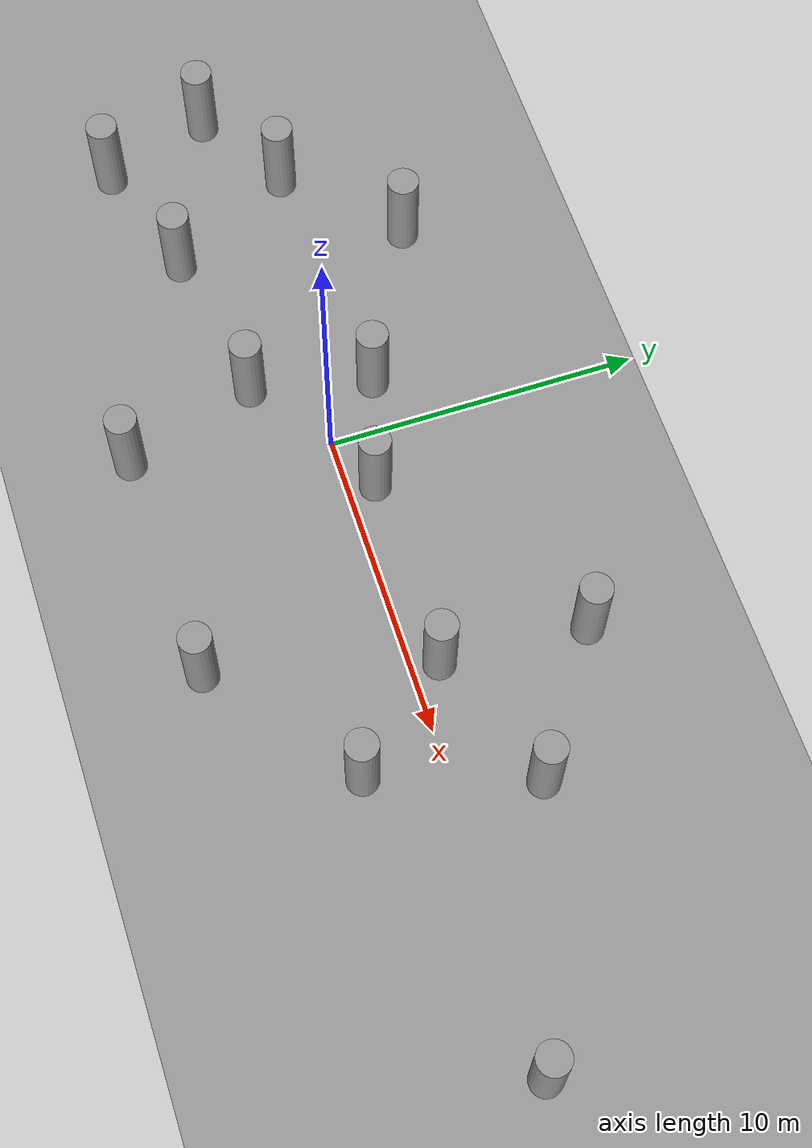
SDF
<sdf version="1.6">
 <world name="default">
  <light name="sun" type="directional">
   <pose>0 0 10 0 -0 0</pose>
   <diffuse>0.8 0.8 0.8 1</diffuse>
   <specular>0.2 0.2 0.2 1</specular>
   <attenuation>
    <range>1000</range>
    <constant>0.9</constant>
    <linear>0.01</linear>
    <quadratic>0.001</quadratic>
   </attenuation>
   <direction>-0.5 0.1 -0.9</direction>
  </light>
  <model name="ground_plane">
   <static>1</static>
   <link name="link">
    <collision name="collision">
     <geometry><plane><normal>0 0 1</normal><size>100 100</size></plane></geometry>
     <surface><friction><ode><mu>100</mu><mu2>50</mu2></ode></friction></surface>
    </collision>
    <visual name="visual">
     <cast_shadows>0</cast_shadows>
     <geometry><plane><normal>0 0 1</normal><size>100 100</size></plane></geometry>
     <material>
      <script><uri>file://media/materials/scripts/gazebo.material</uri><name>Gazebo/Grey</name></script>
     </material>
    </visual>
   </link>
  </model>
  <gravity>0 0 -9.8</gravity>
  <magnetic_field>6e-06 2.3e-05 -4.2e-05</magnetic_field>
  <atmosphere type="adiabatic"/>
  <physics name="default_physics" default="0" type="ode">
   <max_step_size>0.001</max_step_size>
   <real_time_factor>1</real_time_factor>
   <real_time_update_rate>1000</real_time_update_rate>
  </physics>
  <scene><ambient>0.4 0.4 0.4 1</ambient><background>0.7 0.7 0.7 1</background><shadows>1</shadows></scene>
  <audio><device>default</device></audio>
  <spherical_coordinates>
   <surface_model>EARTH_WGS84</surface_model>
   <latitude_deg>0</latitude_deg>
   <longitude_deg>0</longitude_deg>
   <elevation>0</elevation>
   <heading_deg>0</heading_deg>
  </spherical_coordinates>
  <model name="ground">
   <link name="link">
    <inertial>
     <mass>1</mass>
     <inertia>
      <ixx>0.166667</ixx>
      <ixy>0</ixy>
      <ixz>0</ixz>
      <iyy>0.166667</iyy>
      <iyz>0</iyz>
      <izz>0.166667</izz>
     </inertia>
    </inertial>
    <visual name="visual">
     <geometry><box><size>80 20 0.5</size></box></geometry>
     <material>
      <script><name>Gazebo/Grey</name><uri>file://media/materials/scripts/gazebo.material</uri></script>
      <shader type="vertex"><normal_map>__default__</normal_map></shader>
      <ambient>0.3 0.3 0.3 1</ambient>
      <diffuse>0.7 0.7 0.7 1</diffuse>
      <specular>0.01 0.01 0.01 1</specular>
      <emissive>0 0 0 1</emissive>
     </material>
    </visual>
    <collision name="collision">
     <geometry><box><size>80 20 0.5</size></box></geometry>
     <surface>
      <friction>
       <ode><mu>1</mu><mu2>1</mu2><fdir1>0 0 0</fdir1><slip1>0</slip1><slip2>0</slip2></ode>
       <torsional>
        <coefficient>1</coefficient>
        <patch_radius>0</patch_radius>
        <surface_radius>0</surface_radius>
        <use_patch_radius>1</use_patch_radius>
        <ode><slip>0</slip></ode>
       </torsional>
      </friction>
      <bounce><restitution_coefficient>0</restitution_coefficient><threshold>1e+06</threshold></bounce>
      <contact>
       <collide_without_contact>0</collide_without_contact>
       <collide_without_contact_bitmask>1</collide_without_contact_bitmask>
       <collide_bitmask>1</collide_bitmask>
       <ode>
        <soft_cfm>0</soft_cfm>
        <soft_erp>0.2</soft_erp>
        <kp>1e+13</kp>
        <kd>1</kd>
        <max_vel>0.01</max_vel>
        <min_depth>0</min_depth>
       </ode>
       <bullet>
        <split_impulse>1</split_impulse>
        <split_impulse_penetration_threshold>-0.01</split_impulse_penetration_threshold>
        <soft_cfm>0</soft_cfm>
        <soft_erp>0.2</soft_erp>
        <kp>1e+13</kp>
        <kd>1</kd>
       </bullet>
      </contact>
     </surface>
    </collision>
   </link>
   <static>1</static>
   <pose>-0.009361 -0.012874 0.252665 0 -0 0</pose>
  </model>
  <model name="unit_cylinder_clone_clone_0_clone">
   <link name="link">
    <inertial>
     <mass>1</mass>
     <inertia><ixx>0.145833</ixx><ixy>0</ixy><ixz>0</ixz><iyy>0.145833</iyy><iyz>0</iyz><izz>0.125</izz></inertia>
    </inertial>
    <visual name="visual">
     <geometry><cylinder><radius>0.5</radius><length>3</length></cylinder></geometry>
     <material>
      <script><name>Gazebo/Grey</name><uri>file://media/materials/scripts/gazebo.material</uri></script>
      <shader type="vertex"><normal_map>__default__</normal_map></shader>
      <ambient>1 1 1 1</ambient>
      <diffuse>0.7 0.7 0.7 1</diffuse>
      <specular>0.01 0.01 0.01 1</specular>
      <emissive>0 0 0 1</emissive>
     </material>
    </visual>
    <collision name="collision">
     <geometry><cylinder><radius>0.5</radius><length>3</length></cylinder></geometry>
     <surface>
      <friction>
       <ode><mu>1</mu><mu2>1</mu2><fdir1>0 0 0</fdir1><slip1>0</slip1><slip2>0</slip2></ode>
       <torsional>
        <coefficient>1</coefficient>
        <patch_radius>0</patch_radius>
        <surface_radius>0</surface_radius>
        <use_patch_radius>1</use_patch_radius>
        <ode><slip>0</slip></ode>
       </torsional>
      </friction>
      <bounce><restitution_coefficient>0</restitution_coefficient><threshold>1e+06</threshold></bounce>
      <contact>
       <collide_without_contact>0</collide_without_contact>
       <collide_without_contact_bitmask>1</collide_without_contact_bitmask>
       <collide_bitmask>1</collide_bitmask>
       <ode>
        <soft_cfm>0</soft_cfm>
        <soft_erp>0.2</soft_erp>
        <kp>1e+13</kp>
        <kd>1</kd>
        <max_vel>0.01</max_vel>
        <min_depth>0</min_depth>
       </ode>
       <bullet>
        <split_impulse>1</split_impulse>
        <split_impulse_penetration_threshold>-0.01</split_impulse_penetration_threshold>
        <soft_cfm>0</soft_cfm>
        <soft_erp>0.2</soft_erp>
        <kp>1e+13</kp>
        <kd>1</kd>
       </bullet>
      </contact>
     </surface>
    </collision>
   </link>
   <static>1</static>
   <pose>-12.5339 -0.592621 2.00274 -2e-06 2.7e-05 -0.046136</pose>
  </model>
  <model name="unit_cylinder_clone_clone_clone">
   <link name="link">
    <inertial>
     <mass>1</mass>
     <inertia><ixx>0.145833</ixx><ixy>0</ixy><ixz>0</ixz><iyy>0.145833</iyy><iyz>0</iyz><izz>0.125</izz></inertia>
    </inertial>
    <visual name="visual">
     <geometry><cylinder><radius>0.5</radius><length>3</length></cylinder></geometry>
     <material>
      <script><name>Gazebo/Grey</name><uri>file://media/materials/scripts/gazebo.material</uri></script>
      <shader type="vertex"><normal_map>__default__</normal_map></shader>
      <ambient>1 1 1 1</ambient>
      <diffuse>0.7 0.7 0.7 1</diffuse>
      <specular>0.01 0.01 0.01 1</specular>
      <emissive>0 0 0 1</emissive>
     </material>
    </visual>
    <collision name="collision">
     <geometry><cylinder><radius>0.5</radius><length>3</length></cylinder></geometry>
     <surface>
      <friction>
       <ode><mu>1</mu><mu2>1</mu2><fdir1>0 0 0</fdir1><slip1>0</slip1><slip2>0</slip2></ode>
       <torsional>
        <coefficient>1</coefficient>
        <patch_radius>0</patch_radius>
        <surface_radius>0</surface_radius>
        <use_patch_radius>1</use_patch_radius>
        <ode><slip>0</slip></ode>
       </torsional>
      </friction>
      <bounce><restitution_coefficient>0</restitution_coefficient><threshold>1e+06</threshold></bounce>
      <contact>
       <collide_without_contact>0</collide_without_contact>
       <collide_without_contact_bitmask>1</collide_without_contact_bitmask>
       <collide_bitmask>1</collide_bitmask>
       <ode>
        <soft_cfm>0</soft_cfm>
        <soft_erp>0.2</soft_erp>
        <kp>1e+13</kp>
        <kd>1</kd>
        <max_vel>0.01</max_vel>
        <min_depth>0</min_depth>
       </ode>
       <bullet>
        <split_impulse>1</split_impulse>
        <split_impulse_penetration_threshold>-0.01</split_impulse_penetration_threshold>
        <soft_cfm>0</soft_cfm>
        <soft_erp>0.2</soft_erp>
        <kp>1e+13</kp>
        <kd>1</kd>
       </bullet>
      </contact>
     </surface>
    </collision>
   </link>
   <static>1</static>
   <pose>-2.25323 -1.93291 2.00259 1.6e-05 4e-06 -0.004049</pose>
  </model>
  <model name="unit_cylinder_clone_clone_clone_clone_0">
   <link name="link">
    <inertial>
     <mass>1</mass>
     <inertia><ixx>0.145833</ixx><ixy>0</ixy><ixz>0</ixz><iyy>0.145833</iyy><iyz>0</iyz><izz>0.125</izz></inertia>
    </inertial>
    <visual name="visual">
     <geometry><cylinder><radius>0.5</radius><length>3</length></cylinder></geometry>
     <material>
      <script><name>Gazebo/Grey</name><uri>file://media/materials/scripts/gazebo.material</uri></script>
      <shader type="vertex"><normal_map>__default__</normal_map></shader>
      <ambient>1 1 1 1</ambient>
      <diffuse>0.7 0.7 0.7 1</diffuse>
      <specular>0.01 0.01 0.01 1</specular>
      <emissive>0 0 0 1</emissive>
     </material>
    </visual>
    <collision name="collision">
     <geometry><cylinder><radius>0.5</radius><length>3</length></cylinder></geometry>
     <surface>
      <friction>
       <ode><mu>1</mu><mu2>1</mu2><fdir1>0 0 0</fdir1><slip1>0</slip1><slip2>0</slip2></ode>
       <torsional>
        <coefficient>1</coefficient>
        <patch_radius>0</patch_radius>
        <surface_radius>0</surface_radius>
        <use_patch_radius>1</use_patch_radius>
        <ode><slip>0</slip></ode>
       </torsional>
      </friction>
      <bounce><restitution_coefficient>0</restitution_coefficient><threshold>1e+06</threshold></bounce>
      <contact>
       <collide_without_contact>0</collide_without_contact>
       <collide_without_contact_bitmask>1</collide_without_contact_bitmask>
       <collide_bitmask>1</collide_bitmask>
       <ode>
        <soft_cfm>0</soft_cfm>
        <soft_erp>0.2</soft_erp>
        <kp>1e+13</kp>
        <kd>1</kd>
        <max_vel>0.01</max_vel>
        <min_depth>0</min_depth>
       </ode>
       <bullet>
        <split_impulse>1</split_impulse>
        <split_impulse_penetration_threshold>-0.01</split_impulse_penetration_threshold>
        <soft_cfm>0</soft_cfm>
        <soft_erp>0.2</soft_erp>
        <kp>1e+13</kp>
        <kd>1</kd>
       </bullet>
      </contact>
     </surface>
    </collision>
   </link>
   <static>1</static>
   <pose>8.25351 0.781254 2.0026 1.6e-05 4e-06 -0.004049</pose>
  </model>
  <model name="unit_cylinder_clone_clone_clone_clone_0_clone">
   <link name="link">
    <inertial>
     <mass>1</mass>
     <inertia><ixx>0.145833</ixx><ixy>0</ixy><ixz>0</ixz><iyy>0.145833</iyy><iyz>0</iyz><izz>0.125</izz></inertia>
    </inertial>
    <visual name="visual">
     <geometry><cylinder><radius>0.5</radius><length>3</length></cylinder></geometry>
     <material>
      <script><name>Gazebo/Grey</name><uri>file://media/materials/scripts/gazebo.material</uri></script>
      <shader type="vertex"><normal_map>__default__</normal_map></shader>
      <ambient>1 1 1 1</ambient>
      <diffuse>0.7 0.7 0.7 1</diffuse>
      <specular>0.01 0.01 0.01 1</specular>
      <emissive>0 0 0 1</emissive>
     </material>
    </visual>
    <collision name="collision">
     <geometry><cylinder><radius>0.5</radius><length>3</length></cylinder></geometry>
     <surface>
      <friction>
       <ode><mu>1</mu><mu2>1</mu2><fdir1>0 0 0</fdir1><slip1>0</slip1><slip2>0</slip2></ode>
       <torsional>
        <coefficient>1</coefficient>
        <patch_radius>0</patch_radius>
        <surface_radius>0</surface_radius>
        <use_patch_radius>1</use_patch_radius>
        <ode><slip>0</slip></ode>
       </torsional>
      </friction>
      <bounce><restitution_coefficient>0</restitution_coefficient><threshold>1e+06</threshold></bounce>
      <contact>
       <collide_without_contact>0</collide_without_contact>
       <collide_without_contact_bitmask>1</collide_without_contact_bitmask>
       <collide_bitmask>1</collide_bitmask>
       <ode>
        <soft_cfm>0</soft_cfm>
        <soft_erp>0.2</soft_erp>
        <kp>1e+13</kp>
        <kd>1</kd>
        <max_vel>0.01</max_vel>
        <min_depth>0</min_depth>
       </ode>
       <bullet>
        <split_impulse>1</split_impulse>
        <split_impulse_penetration_threshold>-0.01</split_impulse_penetration_threshold>
        <soft_cfm>0</soft_cfm>
        <soft_erp>0.2</soft_erp>
        <kp>1e+13</kp>
        <kd>1</kd>
       </bullet>
      </contact>
     </surface>
    </collision>
   </link>
   <static>1</static>
   <pose>20.4673 -0.33297 2.00257 1.6e-05 4e-06 -0.004049</pose>
  </model>
  <model name="unit_cylinder_clone_clone_clone_clone_clone">
   <link name="link">
    <inertial>
     <mass>1</mass>
     <inertia><ixx>0.145833</ixx><ixy>0</ixy><ixz>0</ixz><iyy>0.145833</iyy><iyz>0</iyz><izz>0.125</izz></inertia>
    </inertial>
    <visual name="visual">
     <geometry><cylinder><radius>0.5</radius><length>3</length></cylinder></geometry>
     <material>
      <script><name>Gazebo/Grey</name><uri>file://media/materials/scripts/gazebo.material</uri></script>
      <shader type="vertex"><normal_map>__default__</normal_map></shader>
      <ambient>1 1 1 1</ambient>
      <diffuse>0.7 0.7 0.7 1</diffuse>
      <specular>0.01 0.01 0.01 1</specular>
      <emissive>0 0 0 1</emissive>
     </material>
    </visual>
    <collision name="collision">
     <geometry><cylinder><radius>0.5</radius><length>3</length></cylinder></geometry>
     <surface>
      <friction>
       <ode><mu>1</mu><mu2>1</mu2><fdir1>0 0 0</fdir1><slip1>0</slip1><slip2>0</slip2></ode>
       <torsional>
        <coefficient>1</coefficient>
        <patch_radius>0</patch_radius>
        <surface_radius>0</surface_radius>
        <use_patch_radius>1</use_patch_radius>
        <ode><slip>0</slip></ode>
       </torsional>
      </friction>
      <bounce><restitution_coefficient>0</restitution_coefficient><threshold>1e+06</threshold></bounce>
      <contact>
       <collide_without_contact>0</collide_without_contact>
       <collide_without_contact_bitmask>1</collide_without_contact_bitmask>
       <collide_bitmask>1</collide_bitmask>
       <ode>
        <soft_cfm>0</soft_cfm>
        <soft_erp>0.2</soft_erp>
        <kp>1e+13</kp>
        <kd>1</kd>
        <max_vel>0.01</max_vel>
        <min_depth>0</min_depth>
       </ode>
       <bullet>
        <split_impulse>1</split_impulse>
        <split_impulse_penetration_threshold>-0.01</split_impulse_penetration_threshold>
        <soft_cfm>0</soft_cfm>
        <soft_erp>0.2</soft_erp>
        <kp>1e+13</kp>
        <kd>1</kd>
       </bullet>
      </contact>
     </surface>
    </collision>
   </link>
   <static>1</static>
   <pose>-7.40268 -2.77786 2.00266 1.6e-05 5e-06 -0.047607</pose>
  </model>
  <model name="unit_cylinder_clone_clone_clone_clone_1">
   <link name="link">
    <inertial>
     <mass>1</mass>
     <inertia><ixx>0.145833</ixx><ixy>0</ixy><ixz>0</ixz><iyy>0.145833</iyy><iyz>0</iyz><izz>0.125</izz></inertia>
    </inertial>
    <visual name="visual">
     <geometry><cylinder><radius>0.5</radius><length>3</length></cylinder></geometry>
     <material>
      <script><name>Gazebo/Grey</name><uri>file://media/materials/scripts/gazebo.material</uri></script>
      <shader type="vertex"><normal_map>__default__</normal_map></shader>
      <ambient>1 1 1 1</ambient>
      <diffuse>0.7 0.7 0.7 1</diffuse>
      <specular>0.01 0.01 0.01 1</specular>
      <emissive>0 0 0 1</emissive>
     </material>
    </visual>
    <collision name="collision">
     <geometry><cylinder><radius>0.5</radius><length>3</length></cylinder></geometry>
     <surface>
      <friction>
       <ode><mu>1</mu><mu2>1</mu2><fdir1>0 0 0</fdir1><slip1>0</slip1><slip2>0</slip2></ode>
       <torsional>
        <coefficient>1</coefficient>
        <patch_radius>0</patch_radius>
        <surface_radius>0</surface_radius>
        <use_patch_radius>1</use_patch_radius>
        <ode><slip>0</slip></ode>
       </torsional>
      </friction>
      <bounce><restitution_coefficient>0</restitution_coefficient><threshold>1e+06</threshold></bounce>
      <contact>
       <collide_without_contact>0</collide_without_contact>
       <collide_without_contact_bitmask>1</collide_without_contact_bitmask>
       <collide_bitmask>1</collide_bitmask>
       <ode>
        <soft_cfm>0</soft_cfm>
        <soft_erp>0.2</soft_erp>
        <kp>1e+13</kp>
        <kd>1</kd>
        <max_vel>0.01</max_vel>
        <min_depth>0</min_depth>
       </ode>
       <bullet>
        <split_impulse>1</split_impulse>
        <split_impulse_penetration_threshold>-0.01</split_impulse_penetration_threshold>
        <soft_cfm>0</soft_cfm>
        <soft_erp>0.2</soft_erp>
        <kp>1e+13</kp>
        <kd>1</kd>
       </bullet>
      </contact>
     </surface>
    </collision>
   </link>
   <static>1</static>
   <pose>-1.39025 1.82135 2.0026 1.6e-05 4e-06 -0.004049</pose>
  </model>
  <model name="unit_cylinder_clone_clone_clone_clone_2">
   <link name="link">
    <inertial>
     <mass>1</mass>
     <inertia><ixx>0.145833</ixx><ixy>0</ixy><ixz>0</ixz><iyy>0.145833</iyy><iyz>0</iyz><izz>0.125</izz></inertia>
    </inertial>
    <visual name="visual">
     <geometry><cylinder><radius>0.5</radius><length>3</length></cylinder></geometry>
     <material>
      <script><name>Gazebo/Grey</name><uri>file://media/materials/scripts/gazebo.material</uri></script>
      <shader type="vertex"><normal_map>__default__</normal_map></shader>
      <ambient>1 1 1 1</ambient>
      <diffuse>0.7 0.7 0.7 1</diffuse>
      <specular>0.01 0.01 0.01 1</specular>
      <emissive>0 0 0 1</emissive>
     </material>
    </visual>
    <collision name="collision">
     <geometry><cylinder><radius>0.5</radius><length>3</length></cylinder></geometry>
     <surface>
      <friction>
       <ode><mu>1</mu><mu2>1</mu2><fdir1>0 0 0</fdir1><slip1>0</slip1><slip2>0</slip2></ode>
       <torsional>
        <coefficient>1</coefficient>
        <patch_radius>0</patch_radius>
        <surface_radius>0</surface_radius>
        <use_patch_radius>1</use_patch_radius>
        <ode><slip>0</slip></ode>
       </torsional>
      </friction>
      <bounce><restitution_coefficient>0</restitution_coefficient><threshold>1e+06</threshold></bounce>
      <contact>
       <collide_without_contact>0</collide_without_contact>
       <collide_without_contact_bitmask>1</collide_without_contact_bitmask>
       <collide_bitmask>1</collide_bitmask>
       <ode>
        <soft_cfm>0</soft_cfm>
        <soft_erp>0.2</soft_erp>
        <kp>1e+13</kp>
        <kd>1</kd>
        <max_vel>0.01</max_vel>
        <min_depth>0</min_depth>
       </ode>
       <bullet>
        <split_impulse>1</split_impulse>
        <split_impulse_penetration_threshold>-0.01</split_impulse_penetration_threshold>
        <soft_cfm>0</soft_cfm>
        <soft_erp>0.2</soft_erp>
        <kp>1e+13</kp>
        <kd>1</kd>
       </bullet>
      </contact>
     </surface>
    </collision>
   </link>
   <static>1</static>
   <pose>2.09358 0.787531 2.0026 1.6e-05 4e-06 -0.004049</pose>
  </model>
  <model name="unit_cylinder_clone_clone_clone_clone_3">
   <link name="link">
    <inertial>
     <mass>1</mass>
     <inertia><ixx>0.145833</ixx><ixy>0</ixy><ixz>0</ixz><iyy>0.145833</iyy><iyz>0</iyz><izz>0.125</izz></inertia>
    </inertial>
    <visual name="visual">
     <geometry><cylinder><radius>0.5</radius><length>3</length></cylinder></geometry>
     <material>
      <script><name>Gazebo/Grey</name><uri>file://media/materials/scripts/gazebo.material</uri></script>
      <shader type="vertex"><normal_map>__default__</normal_map></shader>
      <ambient>1 1 1 1</ambient>
      <diffuse>0.7 0.7 0.7 1</diffuse>
      <specular>0.01 0.01 0.01 1</specular>
      <emissive>0 0 0 1</emissive>
     </material>
    </visual>
    <collision name="collision">
     <geometry><cylinder><radius>0.5</radius><length>3</length></cylinder></geometry>
     <surface>
      <friction>
       <ode><mu>1</mu><mu2>1</mu2><fdir1>0 0 0</fdir1><slip1>0</slip1><slip2>0</slip2></ode>
       <torsional>
        <coefficient>1</coefficient>
        <patch_radius>0</patch_radius>
        <surface_radius>0</surface_radius>
        <use_patch_radius>1</use_patch_radius>
        <ode><slip>0</slip></ode>
       </torsional>
      </friction>
      <bounce><restitution_coefficient>0</restitution_coefficient><threshold>1e+06</threshold></bounce>
      <contact>
       <collide_without_contact>0</collide_without_contact>
       <collide_without_contact_bitmask>1</collide_without_contact_bitmask>
       <collide_bitmask>1</collide_bitmask>
       <ode>
        <soft_cfm>0</soft_cfm>
        <soft_erp>0.2</soft_erp>
        <kp>1e+13</kp>
        <kd>1</kd>
        <max_vel>0.01</max_vel>
        <min_depth>0</min_depth>
       </ode>
       <bullet>
        <split_impulse>1</split_impulse>
        <split_impulse_penetration_threshold>-0.01</split_impulse_penetration_threshold>
        <soft_cfm>0</soft_cfm>
        <soft_erp>0.2</soft_erp>
        <kp>1e+13</kp>
        <kd>1</kd>
       </bullet>
      </contact>
     </surface>
    </collision>
   </link>
   <static>1</static>
   <pose>12.6063 2.46438 2.0026 1.6e-05 4e-06 -0.004049</pose>
  </model>
  <model name="unit_cylinder_clone_clone_clone_clone_4">
   <link name="link">
    <inertial>
     <mass>1</mass>
     <inertia><ixx>0.145833</ixx><ixy>0</ixy><ixz>0</ixz><iyy>0.145833</iyy><iyz>0</iyz><izz>0.125</izz></inertia>
    </inertial>
    <visual name="visual">
     <geometry><cylinder><radius>0.5</radius><length>3</length></cylinder></geometry>
     <material>
      <script><name>Gazebo/Grey</name><uri>file://media/materials/scripts/gazebo.material</uri></script>
      <shader type="vertex"><normal_map>__default__</normal_map></shader>
      <ambient>1 1 1 1</ambient>
      <diffuse>0.7 0.7 0.7 1</diffuse>
      <specular>0.01 0.01 0.01 1</specular>
      <emissive>0 0 0 1</emissive>
     </material>
    </visual>
    <collision name="collision">
     <geometry><cylinder><radius>0.5</radius><length>3</length></cylinder></geometry>
     <surface>
      <friction>
       <ode><mu>1</mu><mu2>1</mu2><fdir1>0 0 0</fdir1><slip1>0</slip1><slip2>0</slip2></ode>
       <torsional>
        <coefficient>1</coefficient>
        <patch_radius>0</patch_radius>
        <surface_radius>0</surface_radius>
        <use_patch_radius>1</use_patch_radius>
        <ode><slip>0</slip></ode>
       </torsional>
      </friction>
      <bounce><restitution_coefficient>0</restitution_coefficient><threshold>1e+06</threshold></bounce>
      <contact>
       <collide_without_contact>0</collide_without_contact>
       <collide_without_contact_bitmask>1</collide_without_contact_bitmask>
       <collide_bitmask>1</collide_bitmask>
       <ode>
        <soft_cfm>0</soft_cfm>
        <soft_erp>0.2</soft_erp>
        <kp>1e+13</kp>
        <kd>1</kd>
        <max_vel>0.01</max_vel>
        <min_depth>0</min_depth>
       </ode>
       <bullet>
        <split_impulse>1</split_impulse>
        <split_impulse_penetration_threshold>-0.01</split_impulse_penetration_threshold>
        <soft_cfm>0</soft_cfm>
        <soft_erp>0.2</soft_erp>
        <kp>1e+13</kp>
        <kd>1</kd>
       </bullet>
      </contact>
     </surface>
    </collision>
   </link>
   <static>1</static>
   <pose>10.9397 -2.43625 2.0026 1.6e-05 4e-06 -0.004049</pose>
  </model>
  <model name="unit_cylinder_clone_clone_clone_clone_5">
   <link name="link">
    <inertial>
     <mass>1</mass>
     <inertia><ixx>0.145833</ixx><ixy>0</ixy><ixz>0</ixz><iyy>0.145833</iyy><iyz>0</iyz><izz>0.125</izz></inertia>
    </inertial>
    <visual name="visual">
     <geometry><cylinder><radius>0.5</radius><length>3</length></cylinder></geometry>
     <material>
      <script><name>Gazebo/Grey</name><uri>file://media/materials/scripts/gazebo.material</uri></script>
      <shader type="vertex"><normal_map>__default__</normal_map></shader>
      <ambient>1 1 1 1</ambient>
      <diffuse>0.7 0.7 0.7 1</diffuse>
      <specular>0.01 0.01 0.01 1</specular>
      <emissive>0 0 0 1</emissive>
     </material>
    </visual>
    <collision name="collision">
     <geometry><cylinder><radius>0.5</radius><length>3</length></cylinder></geometry>
     <surface>
      <friction>
       <ode><mu>1</mu><mu2>1</mu2><fdir1>0 0 0</fdir1><slip1>0</slip1><slip2>0</slip2></ode>
       <torsional>
        <coefficient>1</coefficient>
        <patch_radius>0</patch_radius>
        <surface_radius>0</surface_radius>
        <use_patch_radius>1</use_patch_radius>
        <ode><slip>0</slip></ode>
       </torsional>
      </friction>
      <bounce><restitution_coefficient>0</restitution_coefficient><threshold>1e+06</threshold></bounce>
      <contact>
       <collide_without_contact>0</collide_without_contact>
       <collide_without_contact_bitmask>1</collide_without_contact_bitmask>
       <collide_bitmask>1</collide_bitmask>
       <ode>
        <soft_cfm>0</soft_cfm>
        <soft_erp>0.2</soft_erp>
        <kp>1e+13</kp>
        <kd>1</kd>
        <max_vel>0.01</max_vel>
        <min_depth>0</min_depth>
       </ode>
       <bullet>
        <split_impulse>1</split_impulse>
        <split_impulse_penetration_threshold>-0.01</split_impulse_penetration_threshold>
        <soft_cfm>0</soft_cfm>
        <soft_erp>0.2</soft_erp>
        <kp>1e+13</kp>
        <kd>1</kd>
       </bullet>
      </contact>
     </surface>
    </collision>
   </link>
   <static>1</static>
   <pose>-0.905248 -6.15909 2.00256 1.6e-05 4e-06 -0.004049</pose>
  </model>
  <model name="unit_cylinder_clone_clone_0_clone_clone">
   <link name="link">
    <inertial>
     <mass>1</mass>
     <inertia><ixx>0.145833</ixx><ixy>0</ixy><ixz>0</ixz><iyy>0.145833</iyy><iyz>0</iyz><izz>0.125</izz></inertia>
    </inertial>
    <visual name="visual">
     <geometry><cylinder><radius>0.5</radius><length>3</length></cylinder></geometry>
     <material>
      <script><name>Gazebo/Grey</name><uri>file://media/materials/scripts/gazebo.material</uri></script>
      <shader type="vertex"><normal_map>__default__</normal_map></shader>
      <ambient>1 1 1 1</ambient>
      <diffuse>0.7 0.7 0.7 1</diffuse>
      <specular>0.01 0.01 0.01 1</specular>
      <emissive>0 0 0 1</emissive>
     </material>
    </visual>
    <collision name="collision">
     <geometry><cylinder><radius>0.5</radius><length>3</length></cylinder></geometry>
     <surface>
      <friction>
       <ode><mu>1</mu><mu2>1</mu2><fdir1>0 0 0</fdir1><slip1>0</slip1><slip2>0</slip2></ode>
       <torsional>
        <coefficient>1</coefficient>
        <patch_radius>0</patch_radius>
        <surface_radius>0</surface_radius>
        <use_patch_radius>1</use_patch_radius>
        <ode><slip>0</slip></ode>
       </torsional>
      </friction>
      <bounce><restitution_coefficient>0</restitution_coefficient><threshold>1e+06</threshold></bounce>
      <contact>
       <collide_without_contact>0</collide_without_contact>
       <collide_without_contact_bitmask>1</collide_without_contact_bitmask>
       <collide_bitmask>1</collide_bitmask>
       <ode>
        <soft_cfm>0</soft_cfm>
        <soft_erp>0.2</soft_erp>
        <kp>1e+13</kp>
        <kd>1</kd>
        <max_vel>0.01</max_vel>
        <min_depth>0</min_depth>
       </ode>
       <bullet>
        <split_impulse>1</split_impulse>
        <split_impulse_penetration_threshold>-0.01</split_impulse_penetration_threshold>
        <soft_cfm>0</soft_cfm>
        <soft_erp>0.2</soft_erp>
        <kp>1e+13</kp>
        <kd>1</kd>
       </bullet>
      </contact>
     </surface>
    </collision>
   </link>
   <static>1</static>
   <pose>-11.4004 -4.03468 2.00275 -2e-06 2.7e-05 -0.046136</pose>
  </model>
  <model name="unit_cylinder_clone_clone_clone_clone_clone_0">
   <link name="link">
    <inertial>
     <mass>1</mass>
     <inertia><ixx>0.145833</ixx><ixy>0</ixy><ixz>0</ixz><iyy>0.145833</iyy><iyz>0</iyz><izz>0.125</izz></inertia>
    </inertial>
    <visual name="visual">
     <geometry><cylinder><radius>0.5</radius><length>3</length></cylinder></geometry>
     <material>
      <script><name>Gazebo/Grey</name><uri>file://media/materials/scripts/gazebo.material</uri></script>
      <shader type="vertex"><normal_map>__default__</normal_map></shader>
      <ambient>1 1 1 1</ambient>
      <diffuse>0.7 0.7 0.7 1</diffuse>
      <specular>0.01 0.01 0.01 1</specular>
      <emissive>0 0 0 1</emissive>
     </material>
    </visual>
    <collision name="collision">
     <geometry><cylinder><radius>0.5</radius><length>3</length></cylinder></geometry>
     <surface>
      <friction>
       <ode><mu>1</mu><mu2>1</mu2><fdir1>0 0 0</fdir1><slip1>0</slip1><slip2>0</slip2></ode>
       <torsional>
        <coefficient>1</coefficient>
        <patch_radius>0</patch_radius>
        <surface_radius>0</surface_radius>
        <use_patch_radius>1</use_patch_radius>
        <ode><slip>0</slip></ode>
       </torsional>
      </friction>
      <bounce><restitution_coefficient>0</restitution_coefficient><threshold>1e+06</threshold></bounce>
      <contact>
       <collide_without_contact>0</collide_without_contact>
       <collide_without_contact_bitmask>1</collide_without_contact_bitmask>
       <collide_bitmask>1</collide_bitmask>
       <ode>
        <soft_cfm>0</soft_cfm>
        <soft_erp>0.2</soft_erp>
        <kp>1e+13</kp>
        <kd>1</kd>
        <max_vel>0.01</max_vel>
        <min_depth>0</min_depth>
       </ode>
       <bullet>
        <split_impulse>1</split_impulse>
        <split_impulse_penetration_threshold>-0.01</split_impulse_penetration_threshold>
        <soft_cfm>0</soft_cfm>
        <soft_erp>0.2</soft_erp>
        <kp>1e+13</kp>
        <kd>1</kd>
       </bullet>
      </contact>
     </surface>
    </collision>
   </link>
   <static>1</static>
   <pose>-6.42169 4.45427 2.00266 1.6e-05 5e-06 -0.047607</pose>
  </model>
  <model name="unit_cylinder_clone_clone_clone_clone_4_clone">
   <link name="link">
    <inertial>
     <mass>1</mass>
     <inertia><ixx>0.145833</ixx><ixy>0</ixy><ixz>0</ixz><iyy>0.145833</iyy><iyz>0</iyz><izz>0.125</izz></inertia>
    </inertial>
    <visual name="visual">
     <geometry><cylinder><radius>0.5</radius><length>3</length></cylinder></geometry>
     <material>
      <script><name>Gazebo/Grey</name><uri>file://media/materials/scripts/gazebo.material</uri></script>
      <shader type="vertex"><normal_map>__default__</normal_map></shader>
      <ambient>1 1 1 1</ambient>
      <diffuse>0.7 0.7 0.7 1</diffuse>
      <specular>0.01 0.01 0.01 1</specular>
      <emissive>0 0 0 1</emissive>
     </material>
    </visual>
    <collision name="collision">
     <geometry><cylinder><radius>0.5</radius><length>3</length></cylinder></geometry>
     <surface>
      <friction>
       <ode><mu>1</mu><mu2>1</mu2><fdir1>0 0 0</fdir1><slip1>0</slip1><slip2>0</slip2></ode>
       <torsional>
        <coefficient>1</coefficient>
        <patch_radius>0</patch_radius>
        <surface_radius>0</surface_radius>
        <use_patch_radius>1</use_patch_radius>
        <ode><slip>0</slip></ode>
       </torsional>
      </friction>
      <bounce><restitution_coefficient>0</restitution_coefficient><threshold>1e+06</threshold></bounce>
      <contact>
       <collide_without_contact>0</collide_without_contact>
       <collide_without_contact_bitmask>1</collide_without_contact_bitmask>
       <collide_bitmask>1</collide_bitmask>
       <ode>
        <soft_cfm>0</soft_cfm>
        <soft_erp>0.2</soft_erp>
        <kp>1e+13</kp>
        <kd>1</kd>
        <max_vel>0.01</max_vel>
        <min_depth>0</min_depth>
       </ode>
       <bullet>
        <split_impulse>1</split_impulse>
        <split_impulse_penetration_threshold>-0.01</split_impulse_penetration_threshold>
        <soft_cfm>0</soft_cfm>
        <soft_erp>0.2</soft_erp>
        <kp>1e+13</kp>
        <kd>1</kd>
       </bullet>
      </contact>
     </surface>
    </collision>
   </link>
   <static>1</static>
   <pose>6.48187 -5.93459 2.0026 1.6e-05 4e-06 -0.004049</pose>
  </model>
  <model name="unit_cylinder_clone_clone_clone_clone_1_clone">
   <link name="link">
    <inertial>
     <mass>1</mass>
     <inertia><ixx>0.145833</ixx><ixy>0</ixy><ixz>0</ixz><iyy>0.145833</iyy><iyz>0</iyz><izz>0.125</izz></inertia>
    </inertial>
    <visual name="visual">
     <geometry><cylinder><radius>0.5</radius><length>3</length></cylinder></geometry>
     <material>
      <script><name>Gazebo/Grey</name><uri>file://media/materials/scripts/gazebo.material</uri></script>
      <shader type="vertex"><normal_map>__default__</normal_map></shader>
      <ambient>1 1 1 1</ambient>
      <diffuse>0.7 0.7 0.7 1</diffuse>
      <specular>0.01 0.01 0.01 1</specular>
      <emissive>0 0 0 1</emissive>
     </material>
    </visual>
    <collision name="collision">
     <geometry><cylinder><radius>0.5</radius><length>3</length></cylinder></geometry>
     <surface>
      <friction>
       <ode><mu>1</mu><mu2>1</mu2><fdir1>0 0 0</fdir1><slip1>0</slip1><slip2>0</slip2></ode>
       <torsional>
        <coefficient>1</coefficient>
        <patch_radius>0</patch_radius>
        <surface_radius>0</surface_radius>
        <use_patch_radius>1</use_patch_radius>
        <ode><slip>0</slip></ode>
       </torsional>
      </friction>
      <bounce><restitution_coefficient>0</restitution_coefficient><threshold>1e+06</threshold></bounce>
      <contact>
       <collide_without_contact>0</collide_without_contact>
       <collide_without_contact_bitmask>1</collide_without_contact_bitmask>
       <collide_bitmask>1</collide_bitmask>
       <ode>
        <soft_cfm>0</soft_cfm>
        <soft_erp>0.2</soft_erp>
        <kp>1e+13</kp>
        <kd>1</kd>
        <max_vel>0.01</max_vel>
        <min_depth>0</min_depth>
       </ode>
       <bullet>
        <split_impulse>1</split_impulse>
        <split_impulse_penetration_threshold>-0.01</split_impulse_penetration_threshold>
        <soft_cfm>0</soft_cfm>
        <soft_erp>0.2</soft_erp>
        <kp>1e+13</kp>
        <kd>1</kd>
       </bullet>
      </contact>
     </surface>
    </collision>
   </link>
   <static>1</static>
   <pose>8.5433 5.31202 2.0026 1.6e-05 4e-06 -0.004049</pose>
  </model>
  <model name="unit_cylinder_clone_clone_clone_clone">
   <link name="link">
    <inertial>
     <mass>1</mass>
     <inertia><ixx>0.145833</ixx><ixy>0</ixy><ixz>0</ixz><iyy>0.145833</iyy><iyz>0</iyz><izz>0.125</izz></inertia>
    </inertial>
    <visual name="visual">
     <geometry><cylinder><radius>0.5</radius><length>3</length></cylinder></geometry>
     <material>
      <script><name>Gazebo/Grey</name><uri>file://media/materials/scripts/gazebo.material</uri></script>
      <shader type="vertex"><normal_map>__default__</normal_map></shader>
      <ambient>1 1 1 1</ambient>
      <diffuse>0.7 0.7 0.7 1</diffuse>
      <specular>0.01 0.01 0.01 1</specular>
      <emissive>0 0 0 1</emissive>
     </material>
    </visual>
    <collision name="collision">
     <geometry><cylinder><radius>0.5</radius><length>3</length></cylinder></geometry>
     <surface>
      <friction>
       <ode><mu>1</mu><mu2>1</mu2><fdir1>0 0 0</fdir1><slip1>0</slip1><slip2>0</slip2></ode>
       <torsional>
        <coefficient>1</coefficient>
        <patch_radius>0</patch_radius>
        <surface_radius>0</surface_radius>
        <use_patch_radius>1</use_patch_radius>
        <ode><slip>0</slip></ode>
       </torsional>
      </friction>
      <bounce><restitution_coefficient>0</restitution_coefficient><threshold>1e+06</threshold></bounce>
      <contact>
       <collide_without_contact>0</collide_without_contact>
       <collide_without_contact_bitmask>1</collide_without_contact_bitmask>
       <collide_bitmask>1</collide_bitmask>
       <ode>
        <soft_cfm>0</soft_cfm>
        <soft_erp>0.2</soft_erp>
        <kp>1e+13</kp>
        <kd>1</kd>
        <max_vel>0.01</max_vel>
        <min_depth>0</min_depth>
       </ode>
       <bullet>
        <split_impulse>1</split_impulse>
        <split_impulse_penetration_threshold>-0.01</split_impulse_penetration_threshold>
        <soft_cfm>0</soft_cfm>
        <soft_erp>0.2</soft_erp>
        <kp>1e+13</kp>
        <kd>1</kd>
       </bullet>
      </contact>
     </surface>
    </collision>
   </link>
   <static>1</static>
   <pose>-9.59173 1.25628 2.00266 1.6e-05 5e-06 -0.047607</pose>
  </model>
 </world>
</sdf>
